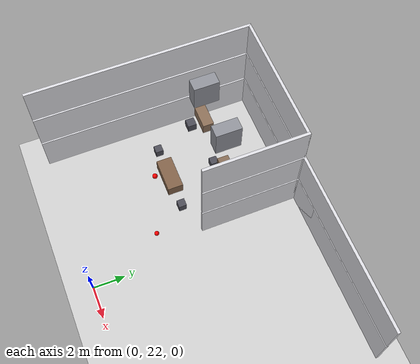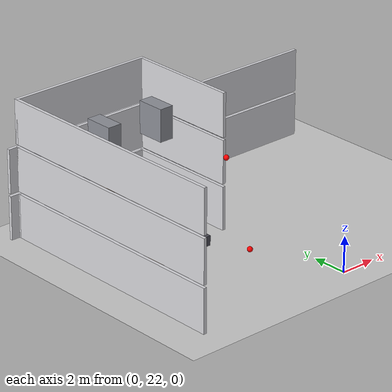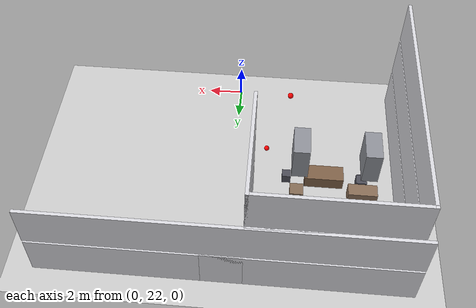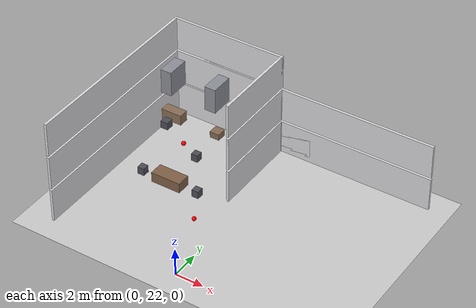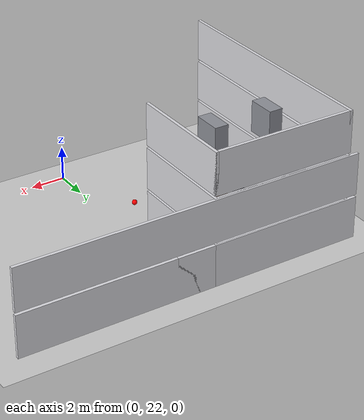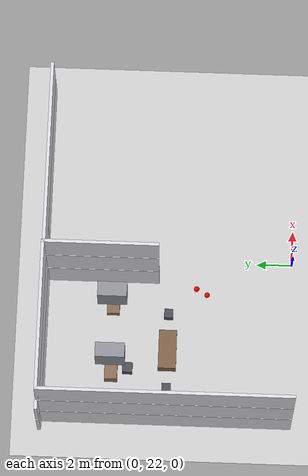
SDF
<sdf version="1.7">
 <world name="generated_world">
  <include><uri>model://sun</uri></include>
  <include><uri>model://ground_plane</uri></include>
  <model name="generated_building">
   <static>true</static>
   <link name="exterior_north_floor_0">
    <pose>0.0000 35.9100 1.2250 0.0000 0.0000 0.0000</pose>
    <collision name="exterior_north_floor_0_collision">
     <geometry><box><size>20.0000 0.1800 2.4500</size></box></geometry>
    </collision>
    <visual name="exterior_north_floor_0_visual">
     <geometry><box><size>20.0000 0.1800 2.4500</size></box></geometry>
     <material><ambient>0.86 0.86 0.88 1</ambient><diffuse>0.86 0.86 0.88 1</diffuse></material>
    </visual>
    <gravity>false</gravity>
   </link>
   <link name="north_end_wall_floor_0">
    <pose>0.0000 35.9100 1.2250 0.0000 0.0000 0.0000</pose>
    <collision name="north_end_wall_floor_0_collision">
     <geometry><box><size>2.2000 0.1800 2.4500</size></box></geometry>
    </collision>
    <visual name="north_end_wall_floor_0_visual">
     <geometry><box><size>2.2000 0.1800 2.4500</size></box></geometry>
     <material><ambient>0.86 0.86 0.88 1</ambient><diffuse>0.86 0.86 0.88 1</diffuse></material>
    </visual>
    <gravity>false</gravity>
   </link>
   <link name="floor_0_room_2_corridor_wall_upper">
    <pose>-1.1900 32.7025 1.2250 0.0000 0.0000 0.0000</pose>
    <collision name="floor_0_room_2_corridor_wall_upper_collision">
     <geometry><box><size>0.1800 6.4150 2.4500</size></box></geometry>
    </collision>
    <visual name="floor_0_room_2_corridor_wall_upper_visual">
     <geometry><box><size>0.1800 6.4150 2.4500</size></box></geometry>
     <material><ambient>0.86 0.86 0.88 1</ambient><diffuse>0.86 0.86 0.88 1</diffuse></material>
    </visual>
    <gravity>false</gravity>
   </link>
   <link name="floor_0_room_2_west_wall">
    <pose>-9.4100 28.8950 1.2250 0.0000 0.0000 0.0000</pose>
    <collision name="floor_0_room_2_west_wall_collision">
     <geometry><box><size>0.1800 14.0300 2.4500</size></box></geometry>
    </collision>
    <visual name="floor_0_room_2_west_wall_visual">
     <geometry><box><size>0.1800 14.0300 2.4500</size></box></geometry>
     <material><ambient>0.86 0.86 0.88 1</ambient><diffuse>0.86 0.86 0.88 1</diffuse></material>
    </visual>
    <gravity>false</gravity>
   </link>
   <link name="floor_0_room_2_north_wall">
    <pose>-5.3000 35.8200 1.2250 0.0000 0.0000 0.0000</pose>
    <collision name="floor_0_room_2_north_wall_collision">
     <geometry><box><size>8.4000 0.1800 2.4500</size></box></geometry>
    </collision>
    <visual name="floor_0_room_2_north_wall_visual">
     <geometry><box><size>8.4000 0.1800 2.4500</size></box></geometry>
     <material><ambient>0.86 0.86 0.88 1</ambient><diffuse>0.86 0.86 0.88 1</diffuse></material>
    </visual>
    <gravity>false</gravity>
   </link>
   <link name="floor_0_room_2_table">
    <pose>-5.3000 28.8950 0.4500 0.0000 0.0000 0.0000</pose>
    <collision name="floor_0_room_2_table_collision">
     <geometry><box><size>2.2000 1.0000 0.7500</size></box></geometry>
    </collision>
    <visual name="floor_0_room_2_table_visual">
     <geometry><box><size>2.2000 1.0000 0.7500</size></box></geometry>
     <material><ambient>0.50 0.38 0.28 1</ambient><diffuse>0.50 0.38 0.28 1</diffuse></material>
    </visual>
    <gravity>false</gravity>
   </link>
   <link name="floor_0_room_2_chair_north">
    <pose>-5.3000 31.9525 0.2800 0.0000 0.0000 0.0000</pose>
    <collision name="floor_0_room_2_chair_north_collision">
     <geometry><box><size>0.5000 0.5000 0.5500</size></box></geometry>
    </collision>
    <visual name="floor_0_room_2_chair_north_visual">
     <geometry><box><size>0.5000 0.5000 0.5500</size></box></geometry>
     <material><ambient>0.30 0.30 0.34 1</ambient><diffuse>0.30 0.30 0.34 1</diffuse></material>
    </visual>
    <gravity>false</gravity>
   </link>
   <link name="floor_0_room_2_chair_west">
    <pose>-7.4500 28.8950 0.2800 0.0000 0.0000 1.5700</pose>
    <collision name="floor_0_room_2_chair_west_collision">
     <geometry><box><size>0.5000 0.5000 0.5500</size></box></geometry>
    </collision>
    <visual name="floor_0_room_2_chair_west_visual">
     <geometry><box><size>0.5000 0.5000 0.5500</size></box></geometry>
     <material><ambient>0.30 0.30 0.34 1</ambient><diffuse>0.30 0.30 0.34 1</diffuse></material>
    </visual>
    <gravity>false</gravity>
   </link>
   <link name="floor_0_room_2_chair_east">
    <pose>-3.1500 28.8950 0.2800 0.0000 0.0000 1.5700</pose>
    <collision name="floor_0_room_2_chair_east_collision">
     <geometry><box><size>0.5000 0.5000 0.5500</size></box></geometry>
    </collision>
    <visual name="floor_0_room_2_chair_east_visual">
     <geometry><box><size>0.5000 0.5000 0.5500</size></box></geometry>
     <material><ambient>0.30 0.30 0.34 1</ambient><diffuse>0.30 0.30 0.34 1</diffuse></material>
    </visual>
    <gravity>false</gravity>
   </link>
   <link name="exterior_north_floor_1">
    <pose>0.0000 35.9100 3.8250 0.0000 0.0000 0.0000</pose>
    <collision name="exterior_north_floor_1_collision">
     <geometry><box><size>20.0000 0.1800 2.4500</size></box></geometry>
    </collision>
    <visual name="exterior_north_floor_1_visual">
     <geometry><box><size>20.0000 0.1800 2.4500</size></box></geometry>
     <material><ambient>0.86 0.86 0.88 1</ambient><diffuse>0.86 0.86 0.88 1</diffuse></material>
    </visual>
    <gravity>false</gravity>
   </link>
   <link name="floor_1_room_2_corridor_wall_upper">
    <pose>-1.1900 32.7025 3.8250 0.0000 0.0000 0.0000</pose>
    <collision name="floor_1_room_2_corridor_wall_upper_collision">
     <geometry><box><size>0.1800 6.4150 2.4500</size></box></geometry>
    </collision>
    <visual name="floor_1_room_2_corridor_wall_upper_visual">
     <geometry><box><size>0.1800 6.4150 2.4500</size></box></geometry>
     <material><ambient>0.86 0.86 0.88 1</ambient><diffuse>0.86 0.86 0.88 1</diffuse></material>
    </visual>
    <gravity>false</gravity>
   </link>
   <link name="floor_1_room_2_west_wall">
    <pose>-9.4100 28.8950 3.8250 0.0000 0.0000 0.0000</pose>
    <collision name="floor_1_room_2_west_wall_collision">
     <geometry><box><size>0.1800 14.0300 2.4500</size></box></geometry>
    </collision>
    <visual name="floor_1_room_2_west_wall_visual">
     <geometry><box><size>0.1800 14.0300 2.4500</size></box></geometry>
     <material><ambient>0.86 0.86 0.88 1</ambient><diffuse>0.86 0.86 0.88 1</diffuse></material>
    </visual>
    <gravity>false</gravity>
   </link>
   <link name="floor_1_room_2_north_wall">
    <pose>-5.3000 35.8200 3.8250 0.0000 0.0000 0.0000</pose>
    <collision name="floor_1_room_2_north_wall_collision">
     <geometry><box><size>8.4000 0.1800 2.4500</size></box></geometry>
    </collision>
    <visual name="floor_1_room_2_north_wall_visual">
     <geometry><box><size>8.4000 0.1800 2.4500</size></box></geometry>
     <material><ambient>0.86 0.86 0.88 1</ambient><diffuse>0.86 0.86 0.88 1</diffuse></material>
    </visual>
    <gravity>false</gravity>
   </link>
   <link name="floor_1_room_2_desk">
    <pose>-7.0000 31.9525 3.0500 0.0000 0.0000 0.0000</pose>
    <collision name="floor_1_room_2_desk_collision">
     <geometry><box><size>1.5000 0.7000 0.7500</size></box></geometry>
    </collision>
    <visual name="floor_1_room_2_desk_visual">
     <geometry><box><size>1.5000 0.7000 0.7500</size></box></geometry>
     <material><ambient>0.54 0.43 0.34 1</ambient><diffuse>0.54 0.43 0.34 1</diffuse></material>
    </visual>
    <gravity>false</gravity>
   </link>
   <link name="floor_1_room_2_chair">
    <pose>-7.0000 31.0525 2.8800 0.0000 0.0000 0.0000</pose>
    <collision name="floor_1_room_2_chair_collision">
     <geometry><box><size>0.5500 0.5500 0.5500</size></box></geometry>
    </collision>
    <visual name="floor_1_room_2_chair_visual">
     <geometry><box><size>0.5500 0.5500 0.5500</size></box></geometry>
     <material><ambient>0.30 0.30 0.34 1</ambient><diffuse>0.30 0.30 0.34 1</diffuse></material>
    </visual>
    <gravity>false</gravity>
   </link>
   <link name="floor_1_room_2_side_table">
    <pose>-3.6000 31.9525 2.9200 0.0000 0.0000 0.0000</pose>
    <collision name="floor_1_room_2_side_table_collision">
     <geometry><box><size>0.7000 0.7000 0.4500</size></box></geometry>
    </collision>
    <visual name="floor_1_room_2_side_table_visual">
     <geometry><box><size>0.7000 0.7000 0.4500</size></box></geometry>
     <material><ambient>0.52 0.42 0.33 1</ambient><diffuse>0.52 0.42 0.33 1</diffuse></material>
    </visual>
    <gravity>false</gravity>
   </link>
   <link name="floor_2_room_2_corridor_wall_upper">
    <pose>-1.1900 32.7025 6.4250 0.0000 0.0000 0.0000</pose>
    <collision name="floor_2_room_2_corridor_wall_upper_collision">
     <geometry><box><size>0.1800 6.4150 2.4500</size></box></geometry>
    </collision>
    <visual name="floor_2_room_2_corridor_wall_upper_visual">
     <geometry><box><size>0.1800 6.4150 2.4500</size></box></geometry>
     <material><ambient>0.86 0.86 0.88 1</ambient><diffuse>0.86 0.86 0.88 1</diffuse></material>
    </visual>
    <gravity>false</gravity>
   </link>
   <link name="floor_2_room_2_west_wall">
    <pose>-9.4100 28.8950 6.4250 0.0000 0.0000 0.0000</pose>
    <collision name="floor_2_room_2_west_wall_collision">
     <geometry><box><size>0.1800 14.0300 2.4500</size></box></geometry>
    </collision>
    <visual name="floor_2_room_2_west_wall_visual">
     <geometry><box><size>0.1800 14.0300 2.4500</size></box></geometry>
     <material><ambient>0.86 0.86 0.88 1</ambient><diffuse>0.86 0.86 0.88 1</diffuse></material>
    </visual>
    <gravity>false</gravity>
   </link>
   <link name="floor_2_room_2_north_wall">
    <pose>-5.3000 35.8200 6.4250 0.0000 0.0000 0.0000</pose>
    <collision name="floor_2_room_2_north_wall_collision">
     <geometry><box><size>8.4000 0.1800 2.4500</size></box></geometry>
    </collision>
    <visual name="floor_2_room_2_north_wall_visual">
     <geometry><box><size>8.4000 0.1800 2.4500</size></box></geometry>
     <material><ambient>0.86 0.86 0.88 1</ambient><diffuse>0.86 0.86 0.88 1</diffuse></material>
    </visual>
    <gravity>false</gravity>
   </link>
   <link name="floor_2_room_2_rack_a">
    <pose>-7.0000 31.9525 6.1000 0.0000 0.0000 0.0000</pose>
    <collision name="floor_2_room_2_rack_a_collision">
     <geometry><box><size>0.8000 1.6000 1.8000</size></box></geometry>
    </collision>
    <visual name="floor_2_room_2_rack_a_visual">
     <geometry><box><size>0.8000 1.6000 1.8000</size></box></geometry>
     <material><ambient>0.56 0.57 0.60 1</ambient><diffuse>0.56 0.57 0.60 1</diffuse></material>
    </visual>
    <gravity>false</gravity>
   </link>
   <link name="floor_2_room_2_rack_b">
    <pose>-3.6000 31.9525 6.1000 0.0000 0.0000 0.0000</pose>
    <collision name="floor_2_room_2_rack_b_collision">
     <geometry><box><size>0.8000 1.6000 1.8000</size></box></geometry>
    </collision>
    <visual name="floor_2_room_2_rack_b_visual">
     <geometry><box><size>0.8000 1.6000 1.8000</size></box></geometry>
     <material><ambient>0.56 0.57 0.60 1</ambient><diffuse>0.56 0.57 0.60 1</diffuse></material>
    </visual>
    <gravity>false</gravity>
   </link>
  </model>
  <model name="danger_red_sphere_01">
   <static>true</static>
   <pose>-3.014900 27.370715 5.350000 0.000000 0.000000 0.000000</pose>
   <link name="link">
    <collision name="collision"><geometry><sphere><radius>0.150</radius></sphere></geometry></collision>
    <visual name="visual">
     <geometry><sphere><radius>0.150</radius></sphere></geometry>
     <material><ambient>1.0 0.0 0.0 1.0</ambient><diffuse>1.0 0.0 0.0 1.0</diffuse></material>
    </visual>
   </link>
  </model>
  <model name="danger_red_sphere_03">
   <static>true</static>
   <pose>-1.915317 26.763420 0.150000 0.000000 0.000000 0.000000</pose>
   <link name="link">
    <collision name="collision"><geometry><sphere><radius>0.150</radius></sphere></geometry></collision>
    <visual name="visual">
     <geometry><sphere><radius>0.150</radius></sphere></geometry>
     <material><ambient>1.0 0.0 0.0 1.0</ambient><diffuse>1.0 0.0 0.0 1.0</diffuse></material>
    </visual>
   </link>
  </model>
 </world>
</sdf>
